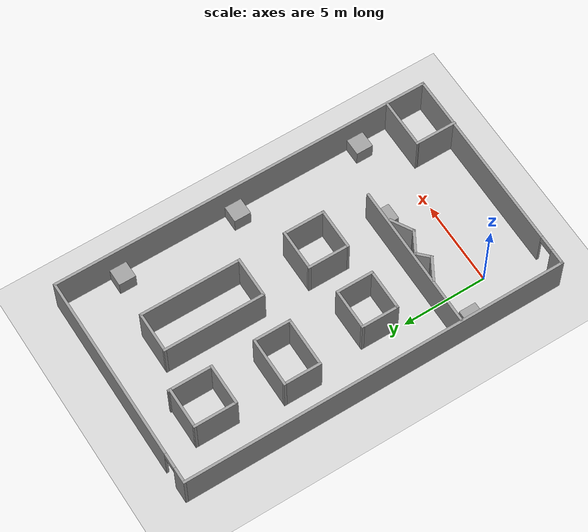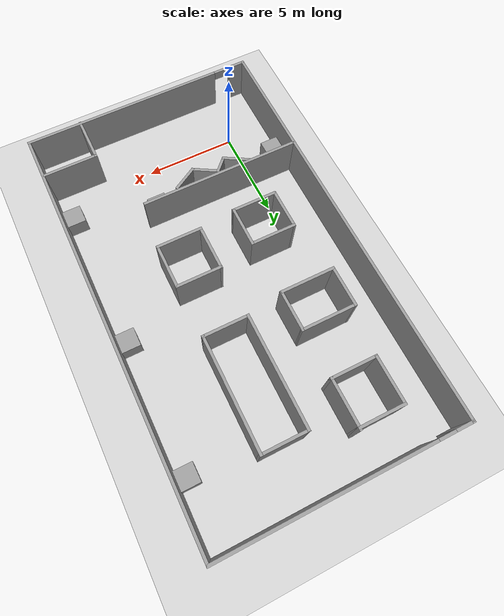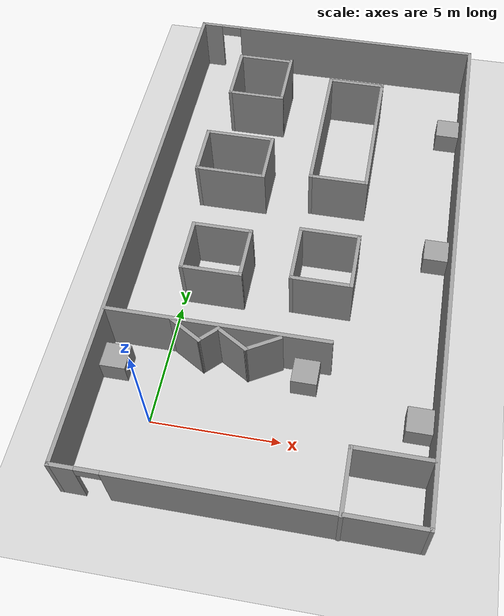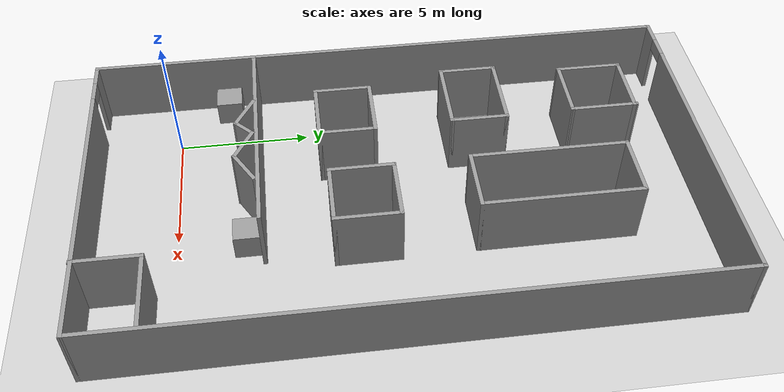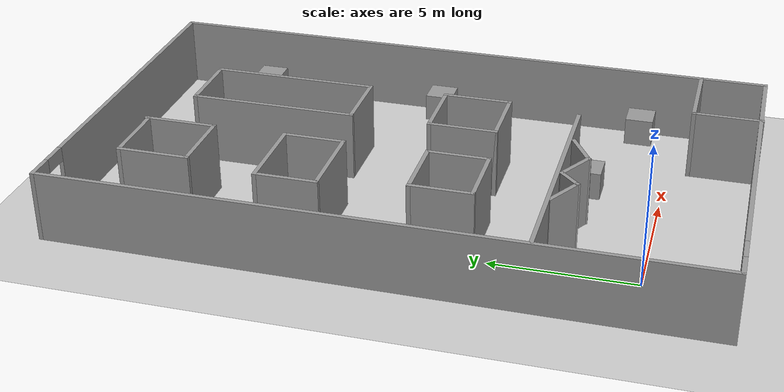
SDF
<sdf version="1.7">
 <world name="default">
  <model name="ground_plane">
   <static>1</static>
   <link name="link">
    <collision name="collision">
     <geometry><plane><normal>0 0 1</normal><size>100 100</size></plane></geometry>
     <surface>
      <contact><collide_bitmask>65535</collide_bitmask></contact>
      <friction><ode><mu>100</mu><mu2>50</mu2></ode></friction>
     </surface>
    </collision>
    <visual name="visual">
     <cast_shadows>0</cast_shadows>
     <geometry><plane><normal>0 0 1</normal><size>100 100</size></plane></geometry>
     <material>
      <script><uri>file://media/materials/scripts/gazebo.material</uri><name>Gazebo/Grey</name></script>
     </material>
    </visual>
   </link>
  </model>
  <model name="office.world">
   <pose>4.09088 8.24144 0 0 -0 1.56877</pose>
   <link name="Wall_10">
    <pose>11.3152 -0 0 0 -0 1.5708</pose>
    <visual name="Wall_10_Visual_0">
     <pose>-0.938999 0 1.25 0 -0 0</pose>
     <geometry><box><size>11.122 0.15 2.5</size></box></geometry>
     <material>
      <script><uri>file://media/materials/scripts/gazebo.material</uri><name>Gazebo/Grey</name></script>
      <ambient>1 1 1 1</ambient>
     </material>
     <meta><layer>0</layer></meta>
    </visual>
    <collision name="Wall_10_Collision_0">
     <geometry><box><size>11.122 0.15 2.5</size></box></geometry>
     <pose>-0.938999 0 1.25 0 -0 0</pose>
    </collision>
    <visual name="Wall_10_Visual_1">
     <pose>6.011 0 1.25 0 -0 0</pose>
     <geometry><box><size>0.977998 0.15 2.5</size></box></geometry>
     <material>
      <script><uri>file://media/materials/scripts/gazebo.material</uri><name>Gazebo/Grey</name></script>
      <ambient>1 1 1 1</ambient>
     </material>
     <meta><layer>0</layer></meta>
    </visual>
    <collision name="Wall_10_Collision_1">
     <geometry><box><size>0.977998 0.15 2.5</size></box></geometry>
     <pose>6.011 0 1.25 0 -0 0</pose>
    </collision>
    <visual name="Wall_10_Visual_2">
     <pose>5.072 0 2.25 0 -0 0</pose>
     <geometry><box><size>0.9 0.15 0.5</size></box></geometry>
     <material>
      <script><uri>file://media/materials/scripts/gazebo.material</uri><name>Gazebo/Grey</name></script>
      <ambient>1 1 1 1</ambient>
     </material>
     <meta><layer>0</layer></meta>
    </visual>
    <collision name="Wall_10_Collision_2">
     <geometry><box><size>0.9 0.15 0.5</size></box></geometry>
     <pose>5.072 0 2.25 0 -0 0</pose>
    </collision>
   </link>
   <link name="Wall_11">
    <collision name="Wall_11_Collision">
     <geometry><box><size>22.75 0.15 2.5</size></box></geometry>
     <pose>0 0 1.25 0 -0 0</pose>
    </collision>
    <visual name="Wall_11_Visual">
     <pose>0 0 1.25 0 -0 0</pose>
     <geometry><box><size>22.75 0.15 2.5</size></box></geometry>
     <material>
      <script><uri>file://media/materials/scripts/gazebo.material</uri><name>Gazebo/Grey</name></script>
      <ambient>1 1 1 1</ambient>
     </material>
     <meta><layer>0</layer></meta>
    </visual>
    <pose>0.015161 6.425 0 0 -0 3.14159</pose>
   </link>
   <link name="Wall_15">
    <collision name="Wall_15_Collision">
     <geometry><box><size>8.75 0.15 2.5</size></box></geometry>
     <pose>0 0 1.25 0 -0 0</pose>
    </collision>
    <visual name="Wall_15_Visual">
     <pose>0 0 1.25 0 -0 0</pose>
     <geometry><box><size>8.75 0.15 2.5</size></box></geometry>
     <material>
      <script><uri>file://media/materials/scripts/gazebo.material</uri><name>Gazebo/Grey</name></script>
      <ambient>1 1 1 1</ambient>
     </material>
     <meta><layer>0</layer></meta>
    </visual>
    <pose>-5.08854 2.04563 0 0 -0 -1.5708</pose>
   </link>
   <link name="Wall_17">
    <collision name="Wall_17_Collision">
     <geometry><box><size>2.5 0.15 2.5</size></box></geometry>
     <pose>0 0 1.25 0 -0 0</pose>
    </collision>
    <visual name="Wall_17_Visual">
     <pose>0 0 1.25 0 -0 0</pose>
     <geometry><box><size>2.5 0.15 2.5</size></box></geometry>
     <material>
      <script><uri>file://media/materials/scripts/gazebo.material</uri><name>Gazebo/Grey</name></script>
      <ambient>1 1 1 1</ambient>
     </material>
     <meta><layer>0</layer></meta>
    </visual>
    <pose>-2.75356 2.83565 0 0 -0 -1.5708</pose>
   </link>
   <link name="Wall_18">
    <collision name="Wall_18_Collision">
     <geometry><box><size>2.25 0.15 2.5</size></box></geometry>
     <pose>0 0 1.25 0 -0 0</pose>
    </collision>
    <visual name="Wall_18_Visual">
     <pose>0 0 1.25 0 -0 0</pose>
     <geometry><box><size>2.25 0.15 2.5</size></box></geometry>
     <material>
      <script><uri>file://media/materials/scripts/gazebo.material</uri><name>Gazebo/Grey</name></script>
      <ambient>1 1 1 1</ambient>
     </material>
     <meta><layer>0</layer></meta>
    </visual>
    <pose>-1.70356 1.66065 0 0 -0 0</pose>
   </link>
   <link name="Wall_19">
    <collision name="Wall_19_Collision">
     <geometry><box><size>2.5 0.15 2.5</size></box></geometry>
     <pose>0 0 1.25 0 -0 0</pose>
    </collision>
    <visual name="Wall_19_Visual">
     <pose>0 0 1.25 0 -0 0</pose>
     <geometry><box><size>2.5 0.15 2.5</size></box></geometry>
     <material>
      <script><uri>file://media/materials/scripts/gazebo.material</uri><name>Gazebo/Grey</name></script>
      <ambient>1 1 1 1</ambient>
     </material>
     <meta><layer>0</layer></meta>
    </visual>
    <pose>-0.653558 2.83565 0 0 -0 1.5708</pose>
   </link>
   <link name="Wall_20">
    <collision name="Wall_20_Collision">
     <geometry><box><size>2.25 0.15 2.5</size></box></geometry>
     <pose>0 0 1.25 0 -0 0</pose>
    </collision>
    <visual name="Wall_20_Visual">
     <pose>0 0 1.25 0 -0 0</pose>
     <geometry><box><size>2.25 0.15 2.5</size></box></geometry>
     <material>
      <script><uri>file://media/materials/scripts/gazebo.material</uri><name>Gazebo/Grey</name></script>
      <ambient>1 1 1 1</ambient>
     </material>
     <meta><layer>0</layer></meta>
    </visual>
    <pose>-1.70356 4.01065 0 0 -0 3.14159</pose>
   </link>
   <link name="Wall_22">
    <collision name="Wall_22_Collision">
     <geometry><box><size>3 0.15 2.5</size></box></geometry>
     <pose>0 0 1.25 0 -0 0</pose>
    </collision>
    <visual name="Wall_22_Visual">
     <pose>0 0 1.25 0 -0 0</pose>
     <geometry><box><size>3 0.15 2.5</size></box></geometry>
     <material>
      <script><uri>file://media/materials/scripts/gazebo.material</uri><name>Gazebo/Grey</name></script>
      <ambient>1 1 1 1</ambient>
     </material>
     <meta><layer>0</layer></meta>
    </visual>
    <pose>2.27019 3.1611 0 0 -0 -1.5708</pose>
   </link>
   <link name="Wall_23">
    <collision name="Wall_23_Collision">
     <geometry><box><size>2.25 0.15 2.5</size></box></geometry>
     <pose>0 0 1.25 0 -0 0</pose>
    </collision>
    <visual name="Wall_23_Visual">
     <pose>0 0 1.25 0 -0 0</pose>
     <geometry><box><size>2.25 0.15 2.5</size></box></geometry>
     <material>
      <script><uri>file://media/materials/scripts/gazebo.material</uri><name>Gazebo/Grey</name></script>
      <ambient>1 1 1 1</ambient>
     </material>
     <meta><layer>0</layer></meta>
    </visual>
    <pose>3.32019 1.7361 0 0 -0 0</pose>
   </link>
   <link name="Wall_24">
    <collision name="Wall_24_Collision">
     <geometry><box><size>3 0.15 2.5</size></box></geometry>
     <pose>0 0 1.25 0 -0 0</pose>
    </collision>
    <visual name="Wall_24_Visual">
     <pose>0 0 1.25 0 -0 0</pose>
     <geometry><box><size>3 0.15 2.5</size></box></geometry>
     <material>
      <script><uri>file://media/materials/scripts/gazebo.material</uri><name>Gazebo/Grey</name></script>
      <ambient>1 1 1 1</ambient>
     </material>
     <meta><layer>0</layer></meta>
    </visual>
    <pose>4.37019 3.1611 0 0 -0 1.5708</pose>
   </link>
   <link name="Wall_25">
    <collision name="Wall_25_Collision">
     <geometry><box><size>2.25 0.15 2.5</size></box></geometry>
     <pose>0 0 1.25 0 -0 0</pose>
    </collision>
    <visual name="Wall_25_Visual">
     <pose>0 0 1.25 0 -0 0</pose>
     <geometry><box><size>2.25 0.15 2.5</size></box></geometry>
     <material>
      <script><uri>file://media/materials/scripts/gazebo.material</uri><name>Gazebo/Grey</name></script>
      <ambient>1 1 1 1</ambient>
     </material>
     <meta><layer>0</layer></meta>
    </visual>
    <pose>3.32019 4.5861 0 0 -0 3.14159</pose>
   </link>
   <link name="Wall_27">
    <collision name="Wall_27_Collision">
     <geometry><box><size>2.5 0.15 2.5</size></box></geometry>
     <pose>0 0 1.25 0 -0 0</pose>
    </collision>
    <visual name="Wall_27_Visual">
     <pose>0 0 1.25 0 -0 0</pose>
     <geometry><box><size>2.5 0.15 2.5</size></box></geometry>
     <material>
      <script><uri>file://media/materials/scripts/gazebo.material</uri><name>Gazebo/Grey</name></script>
      <ambient>1 1 1 1</ambient>
     </material>
     <meta><layer>0</layer></meta>
    </visual>
    <pose>6.94016 2.97716 0 0 -0 -1.5708</pose>
   </link>
   <link name="Wall_28">
    <collision name="Wall_28_Collision">
     <geometry><box><size>2.64151 0.15 2.5</size></box></geometry>
     <pose>0 0 1.25 0 -0 0</pose>
    </collision>
    <visual name="Wall_28_Visual">
     <pose>0 0 1.25 0 -0 0</pose>
     <geometry><box><size>2.64151 0.15 2.5</size></box></geometry>
     <material>
      <script><uri>file://media/materials/scripts/gazebo.material</uri><name>Gazebo/Grey</name></script>
      <ambient>1 1 1 1</ambient>
     </material>
     <meta><layer>0</layer></meta>
    </visual>
    <pose>8.18592 1.80216 0 0 -0 0</pose>
   </link>
   <link name="Wall_29">
    <collision name="Wall_29_Collision">
     <geometry><box><size>2.5 0.15 2.5</size></box></geometry>
     <pose>0 0 1.25 0 -0 0</pose>
    </collision>
    <visual name="Wall_29_Visual">
     <pose>0 0 1.25 0 -0 0</pose>
     <geometry><box><size>2.5 0.15 2.5</size></box></geometry>
     <material>
      <script><uri>file://media/materials/scripts/gazebo.material</uri><name>Gazebo/Grey</name></script>
      <ambient>1 1 1 1</ambient>
     </material>
     <meta><layer>0</layer></meta>
    </visual>
    <pose>9.36092 2.97716 0 0 -0 1.5708</pose>
   </link>
   <link name="Wall_30">
    <collision name="Wall_30_Collision">
     <geometry><box><size>2.57076 0.15 2.5</size></box></geometry>
     <pose>0 0 1.25 0 -0 0</pose>
    </collision>
    <visual name="Wall_30_Visual">
     <pose>0 0 1.25 0 -0 0</pose>
     <geometry><box><size>2.57076 0.15 2.5</size></box></geometry>
     <material>
      <script><uri>file://media/materials/scripts/gazebo.material</uri><name>Gazebo/Grey</name></script>
      <ambient>1 1 1 1</ambient>
     </material>
     <meta><layer>0</layer></meta>
    </visual>
    <pose>8.15054 4.15216 0 0 -0 3.14159</pose>
   </link>
   <link name="Wall_32">
    <collision name="Wall_32_Collision">
     <geometry><box><size>2.5 0.15 2.5</size></box></geometry>
     <pose>0 0 1.25 0 -0 0</pose>
    </collision>
    <visual name="Wall_32_Visual">
     <pose>0 0 1.25 0 -0 0</pose>
     <geometry><box><size>2.5 0.15 2.5</size></box></geometry>
     <material>
      <script><uri>file://media/materials/scripts/gazebo.material</uri><name>Gazebo/Grey</name></script>
      <ambient>1 1 1 1</ambient>
     </material>
     <meta><layer>0</layer></meta>
    </visual>
    <pose>-2.54129 -1.48053 0 0 -0 -1.5708</pose>
   </link>
   <link name="Wall_33">
    <collision name="Wall_33_Collision">
     <geometry><box><size>2.5 0.15 2.5</size></box></geometry>
     <pose>0 0 1.25 0 -0 0</pose>
    </collision>
    <visual name="Wall_33_Visual">
     <pose>0 0 1.25 0 -0 0</pose>
     <geometry><box><size>2.5 0.15 2.5</size></box></geometry>
     <material>
      <script><uri>file://media/materials/scripts/gazebo.material</uri><name>Gazebo/Grey</name></script>
      <ambient>1 1 1 1</ambient>
     </material>
     <meta><layer>0</layer></meta>
    </visual>
    <pose>-1.36629 -2.65553 0 0 -0 0</pose>
   </link>
   <link name="Wall_34">
    <collision name="Wall_34_Collision">
     <geometry><box><size>2.5 0.15 2.5</size></box></geometry>
     <pose>0 0 1.25 0 -0 0</pose>
    </collision>
    <visual name="Wall_34_Visual">
     <pose>0 0 1.25 0 -0 0</pose>
     <geometry><box><size>2.5 0.15 2.5</size></box></geometry>
     <material>
      <script><uri>file://media/materials/scripts/gazebo.material</uri><name>Gazebo/Grey</name></script>
      <ambient>1 1 1 1</ambient>
     </material>
     <meta><layer>0</layer></meta>
    </visual>
    <pose>-0.191286 -1.48053 0 0 -0 1.5708</pose>
   </link>
   <link name="Wall_35">
    <collision name="Wall_35_Collision">
     <geometry><box><size>2.5 0.15 2.5</size></box></geometry>
     <pose>0 0 1.25 0 -0 0</pose>
    </collision>
    <visual name="Wall_35_Visual">
     <pose>0 0 1.25 0 -0 0</pose>
     <geometry><box><size>2.5 0.15 2.5</size></box></geometry>
     <material>
      <script><uri>file://media/materials/scripts/gazebo.material</uri><name>Gazebo/Grey</name></script>
      <ambient>1 1 1 1</ambient>
     </material>
     <meta><layer>0</layer></meta>
    </visual>
    <pose>-1.36629 -0.305535 0 0 -0 3.14159</pose>
   </link>
   <link name="Wall_37">
    <collision name="Wall_37_Collision">
     <geometry><box><size>2.5 0.15 2.5</size></box></geometry>
     <pose>0 0 1.25 0 -0 0</pose>
    </collision>
    <visual name="Wall_37_Visual">
     <pose>0 0 1.25 0 -0 0</pose>
     <geometry><box><size>2.5 0.15 2.5</size></box></geometry>
     <material>
      <script><uri>file://media/materials/scripts/gazebo.material</uri><name>Gazebo/Grey</name></script>
      <ambient>1 1 1 1</ambient>
     </material>
     <meta><layer>0</layer></meta>
    </visual>
    <pose>2.62398 -1.40978 0 0 -0 -1.5708</pose>
   </link>
   <link name="Wall_38">
    <collision name="Wall_38_Collision">
     <geometry><box><size>6 0.15 2.5</size></box></geometry>
     <pose>0 0 1.25 0 -0 0</pose>
    </collision>
    <visual name="Wall_38_Visual">
     <pose>0 0 1.25 0 -0 0</pose>
     <geometry><box><size>6 0.15 2.5</size></box></geometry>
     <material>
      <script><uri>file://media/materials/scripts/gazebo.material</uri><name>Gazebo/Grey</name></script>
      <ambient>1 1 1 1</ambient>
     </material>
     <meta><layer>0</layer></meta>
    </visual>
    <pose>5.54898 -2.58478 0 0 -0 0</pose>
   </link>
   <link name="Wall_39">
    <collision name="Wall_39_Collision">
     <geometry><box><size>2.5 0.15 2.5</size></box></geometry>
     <pose>0 0 1.25 0 -0 0</pose>
    </collision>
    <visual name="Wall_39_Visual">
     <pose>0 0 1.25 0 -0 0</pose>
     <geometry><box><size>2.5 0.15 2.5</size></box></geometry>
     <material>
      <script><uri>file://media/materials/scripts/gazebo.material</uri><name>Gazebo/Grey</name></script>
      <ambient>1 1 1 1</ambient>
     </material>
     <meta><layer>0</layer></meta>
    </visual>
    <pose>8.47398 -1.40978 0 0 -0 1.5708</pose>
   </link>
   <link name="Wall_40">
    <collision name="Wall_40_Collision">
     <geometry><box><size>6 0.15 2.5</size></box></geometry>
     <pose>0 0 1.25 0 -0 0</pose>
    </collision>
    <visual name="Wall_40_Visual">
     <pose>0 0 1.25 0 -0 0</pose>
     <geometry><box><size>6 0.15 2.5</size></box></geometry>
     <material>
      <script><uri>file://media/materials/scripts/gazebo.material</uri><name>Gazebo/Grey</name></script>
      <ambient>1 1 1 1</ambient>
     </material>
     <meta><layer>0</layer></meta>
    </visual>
    <pose>5.54898 -0.234777 0 0 -0 3.14159</pose>
   </link>
   <link name="Wall_42">
    <collision name="Wall_42_Collision">
     <geometry><box><size>1.5 0.15 2.5</size></box></geometry>
     <pose>0 0 1.25 0 -0 0</pose>
    </collision>
    <visual name="Wall_42_Visual">
     <pose>0 0 1.25 0 -0 0</pose>
     <geometry><box><size>1.5 0.15 2.5</size></box></geometry>
     <material>
      <script><uri>file://media/materials/scripts/gazebo.material</uri><name>Gazebo/Grey</name></script>
      <ambient>1 1 1 1</ambient>
     </material>
     <meta><layer>0</layer></meta>
    </visual>
    <pose>-5.4968 3.14305 0 0 -0 -2.0944</pose>
   </link>
   <link name="Wall_43">
    <collision name="Wall_43_Collision">
     <geometry><box><size>1 0.15 2.5</size></box></geometry>
     <pose>0 0 1.25 0 -0 0</pose>
    </collision>
    <visual name="Wall_43_Visual">
     <pose>0 0 1.25 0 -0 0</pose>
     <geometry><box><size>1 0.15 2.5</size></box></geometry>
     <material>
      <script><uri>file://media/materials/scripts/gazebo.material</uri><name>Gazebo/Grey</name></script>
      <ambient>1 1 1 1</ambient>
     </material>
     <meta><layer>0</layer></meta>
    </visual>
    <pose>-5.53378 2.25796 0 0 -0 -0.785398</pose>
   </link>
   <link name="Wall_44">
    <collision name="Wall_44_Collision">
     <geometry><box><size>1.5 0.15 2.5</size></box></geometry>
     <pose>0 0 1.25 0 -0 0</pose>
    </collision>
    <visual name="Wall_44_Visual">
     <pose>0 0 1.25 0 -0 0</pose>
     <geometry><box><size>1.5 0.15 2.5</size></box></geometry>
     <material>
      <script><uri>file://media/materials/scripts/gazebo.material</uri><name>Gazebo/Grey</name></script>
      <ambient>1 1 1 1</ambient>
     </material>
     <meta><layer>0</layer></meta>
    </visual>
    <pose>-5.57076 1.37288 0 0 -0 -2.0944</pose>
   </link>
   <link name="Wall_45">
    <collision name="Wall_45_Collision">
     <geometry><box><size>1.5 0.15 2.5</size></box></geometry>
     <pose>0 0 1.25 0 -0 0</pose>
    </collision>
    <visual name="Wall_45_Visual">
     <pose>0 0 1.25 0 -0 0</pose>
     <geometry><box><size>1.5 0.15 2.5</size></box></geometry>
     <material>
      <script><uri>file://media/materials/scripts/gazebo.material</uri><name>Gazebo/Grey</name></script>
      <ambient>1 1 1 1</ambient>
     </material>
     <meta><layer>0</layer></meta>
    </visual>
    <pose>-5.57076 0.203741 0 0 -0 -1.0472</pose>
   </link>
   <link name="Wall_47">
    <collision name="Wall_47_Collision">
     <geometry><box><size>2.5 0.15 2.5</size></box></geometry>
     <pose>0 0 1.25 0 -0 0</pose>
    </collision>
    <visual name="Wall_47_Visual">
     <pose>0 0 1.25 0 -0 0</pose>
     <geometry><box><size>2.5 0.15 2.5</size></box></geometry>
     <material>
      <script><uri>file://media/materials/scripts/gazebo.material</uri><name>Gazebo/Grey</name></script>
      <ambient>1 1 1 1</ambient>
     </material>
     <meta><layer>0</layer></meta>
    </visual>
    <pose>-10.1402 -3.4896 0 0 -0 0</pose>
   </link>
   <link name="Wall_48">
    <collision name="Wall_48_Collision">
     <geometry><box><size>3 0.15 2.5</size></box></geometry>
     <pose>0 0 1.25 0 -0 0</pose>
    </collision>
    <visual name="Wall_48_Visual">
     <pose>0 0 1.25 0 -0 0</pose>
     <geometry><box><size>3 0.15 2.5</size></box></geometry>
     <material>
      <script><uri>file://media/materials/scripts/gazebo.material</uri><name>Gazebo/Grey</name></script>
      <ambient>1 1 1 1</ambient>
     </material>
     <meta><layer>0</layer></meta>
    </visual>
    <pose>-8.96516 -4.9146 0 0 -0 -1.5708</pose>
   </link>
   <link name="Wall_8">
    <pose>-11.2848 -0 0 0 -0 -1.5708</pose>
    <visual name="Wall_8_Visual_0">
     <pose>-6.011 0 1.25 0 -0 0</pose>
     <geometry><box><size>0.977998 0.15 2.5</size></box></geometry>
     <material>
      <script><uri>file://media/materials/scripts/gazebo.material</uri><name>Gazebo/Grey</name></script>
      <ambient>1 1 1 1</ambient>
     </material>
     <meta><layer>0</layer></meta>
    </visual>
    <collision name="Wall_8_Collision_0">
     <geometry><box><size>0.977998 0.15 2.5</size></box></geometry>
     <pose>-6.011 0 1.25 0 -0 0</pose>
    </collision>
    <visual name="Wall_8_Visual_1">
     <pose>0.938999 0 1.25 0 -0 0</pose>
     <geometry><box><size>11.122 0.15 2.5</size></box></geometry>
     <material>
      <script><uri>file://media/materials/scripts/gazebo.material</uri><name>Gazebo/Grey</name></script>
      <ambient>1 1 1 1</ambient>
     </material>
     <meta><layer>0</layer></meta>
    </visual>
    <collision name="Wall_8_Collision_1">
     <geometry><box><size>11.122 0.15 2.5</size></box></geometry>
     <pose>0.938999 0 1.25 0 -0 0</pose>
    </collision>
    <visual name="Wall_8_Visual_2">
     <pose>-5.072 0 2.25 0 -0 0</pose>
     <geometry><box><size>0.9 0.15 0.5</size></box></geometry>
     <material>
      <script><uri>file://media/materials/scripts/gazebo.material</uri><name>Gazebo/Grey</name></script>
      <ambient>1 1 1 1</ambient>
     </material>
     <meta><layer>0</layer></meta>
    </visual>
    <collision name="Wall_8_Collision_2">
     <geometry><box><size>0.9 0.15 0.5</size></box></geometry>
     <pose>-5.072 0 2.25 0 -0 0</pose>
    </collision>
   </link>
   <link name="Wall_9">
    <collision name="Wall_9_Collision">
     <geometry><box><size>22.75 0.15 2.5</size></box></geometry>
     <pose>0 0 1.25 0 -0 0</pose>
    </collision>
    <visual name="Wall_9_Visual">
     <pose>0 0 1.25 0 -0 0</pose>
     <geometry><box><size>22.75 0.15 2.5</size></box></geometry>
     <material>
      <script><uri>file://media/materials/scripts/gazebo.material</uri><name>Gazebo/Grey</name></script>
      <ambient>1 1 1 1</ambient>
     </material>
     <meta><layer>0</layer></meta>
    </visual>
    <pose>0.015161 -6.425 0 0 -0 0</pose>
   </link>
   <static>1</static>
  </model>
  <model name="unit_box_0">
   <pose>5.48936 2.57462 0.499995 0 1e-05 -0.001801</pose>
   <link name="link">
    <inertial>
     <mass>1</mass>
     <inertia>
      <ixx>0.166667</ixx>
      <ixy>0</ixy>
      <ixz>0</ixz>
      <iyy>0.166667</iyy>
      <iyz>0</iyz>
      <izz>0.166667</izz>
     </inertia>
    </inertial>
    <collision name="collision"><geometry><box><size>1 1 1</size></box></geometry></collision>
    <visual name="visual">
     <geometry><box><size>1 1 1</size></box></geometry>
     <material>
      <script><name>Gazebo/Grey</name><uri>file://media/materials/scripts/gazebo.material</uri></script>
     </material>
    </visual>
   </link>
  </model>
  <model name="unit_box_1">
   <pose>9.94229 8.98141 0.499995 -0 1e-05 -0.002056</pose>
   <link name="link">
    <inertial>
     <mass>1</mass>
     <inertia>
      <ixx>0.166667</ixx>
      <ixy>0</ixy>
      <ixz>0</ixz>
      <iyy>0.166667</iyy>
      <iyz>0</iyz>
      <izz>0.166667</izz>
     </inertia>
    </inertial>
    <collision name="collision"><geometry><box><size>1 1 1</size></box></geometry></collision>
    <visual name="visual">
     <geometry><box><size>1 1 1</size></box></geometry>
     <material>
      <script><name>Gazebo/Grey</name><uri>file://media/materials/scripts/gazebo.material</uri></script>
     </material>
    </visual>
   </link>
  </model>
  <model name="unit_box_2">
   <pose>9.95648 15.9919 0.499995 1e-05 -0 -0.002053</pose>
   <link name="link">
    <inertial>
     <mass>1</mass>
     <inertia>
      <ixx>0.166667</ixx>
      <ixy>0</ixy>
      <ixz>0</ixz>
      <iyy>0.166667</iyy>
      <iyz>0</iyz>
      <izz>0.166667</izz>
     </inertia>
    </inertial>
    <collision name="collision"><geometry><box><size>1 1 1</size></box></geometry></collision>
    <visual name="visual">
     <geometry><box><size>1 1 1</size></box></geometry>
     <material>
      <script><name>Gazebo/Grey</name><uri>file://media/materials/scripts/gazebo.material</uri></script>
     </material>
    </visual>
   </link>
  </model>
  <model name="unit_box_3">
   <pose>-1.77173 2.01251 0.499995 1e-05 -0 -0.001829</pose>
   <link name="link">
    <inertial>
     <mass>1</mass>
     <inertia>
      <ixx>0.166667</ixx>
      <ixy>0</ixy>
      <ixz>0</ixz>
      <iyy>0.166667</iyy>
      <iyz>0</iyz>
      <izz>0.166667</izz>
     </inertia>
    </inertial>
    <collision name="collision"><geometry><box><size>1 1 1</size></box></geometry></collision>
    <visual name="visual">
     <geometry><box><size>1 1 1</size></box></geometry>
     <material>
      <script><name>Gazebo/Grey</name><uri>file://media/materials/scripts/gazebo.material</uri></script>
     </material>
    </visual>
   </link>
  </model>
  <model name="unit_box_4">
   <pose>9.92676 1.31192 0.499995 -1e-05 0 -0.002039</pose>
   <link name="link">
    <inertial>
     <mass>1</mass>
     <inertia>
      <ixx>0.166667</ixx>
      <ixy>0</ixy>
      <ixz>0</ixz>
      <iyy>0.166667</iyy>
      <iyz>0</iyz>
      <izz>0.166667</izz>
     </inertia>
    </inertial>
    <collision name="collision"><geometry><box><size>1 1 1</size></box></geometry></collision>
    <visual name="visual">
     <geometry><box><size>1 1 1</size></box></geometry>
     <material>
      <script><name>Gazebo/Grey</name><uri>file://media/materials/scripts/gazebo.material</uri></script>
     </material>
    </visual>
   </link>
  </model>
 </world>
</sdf>
